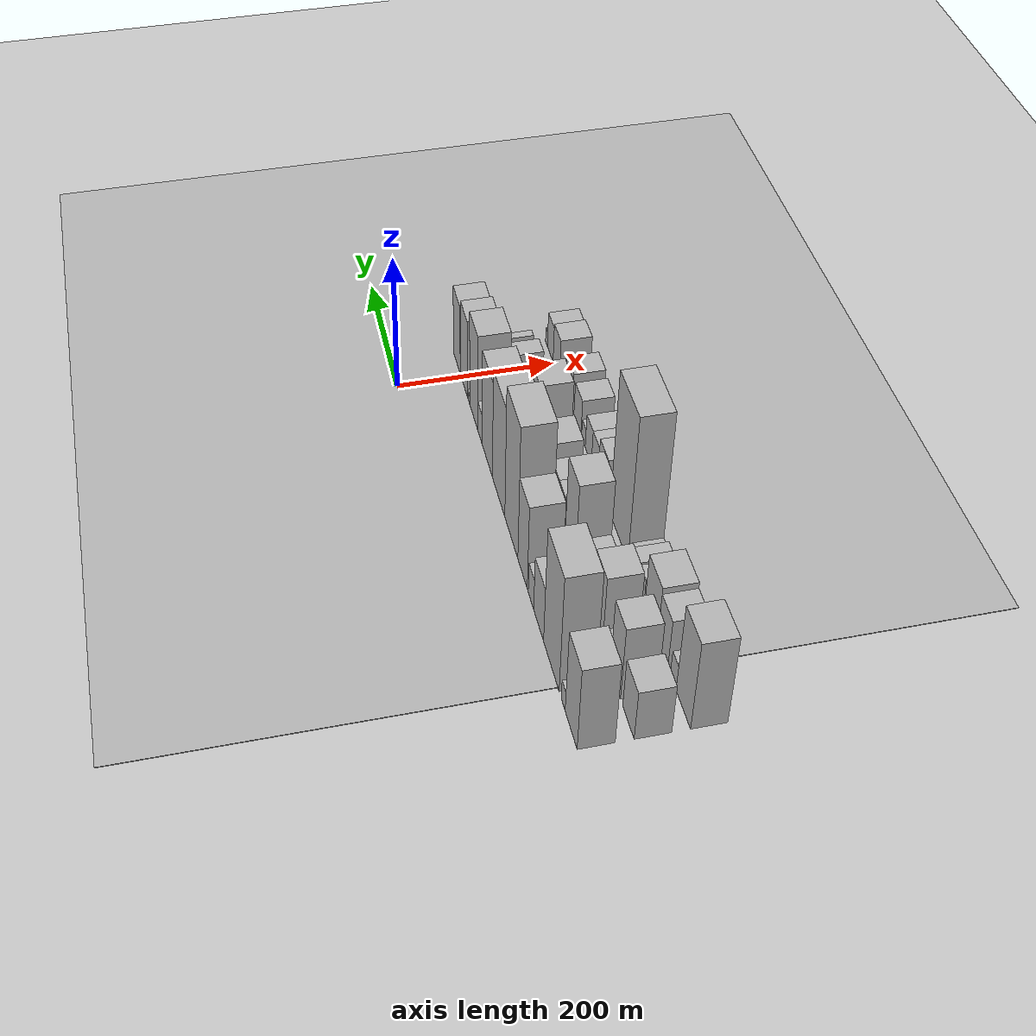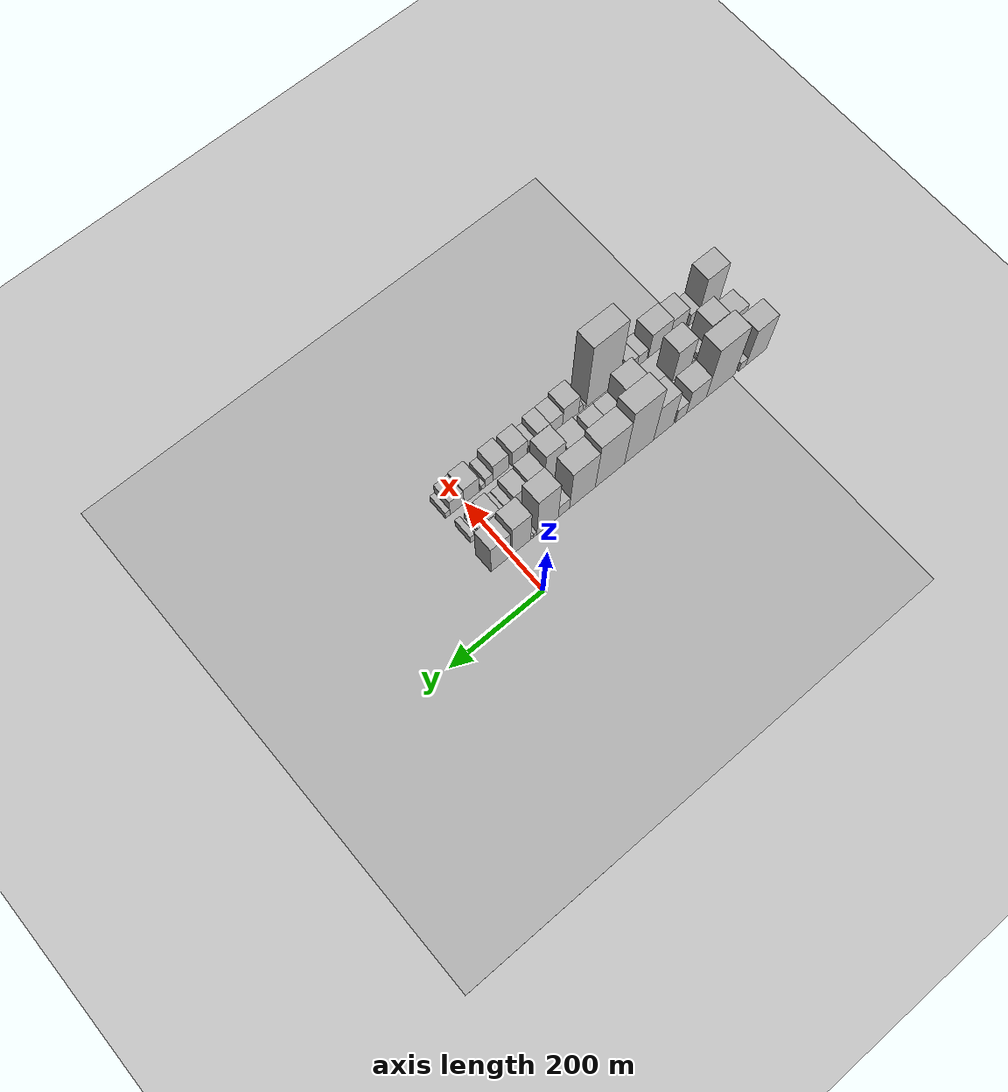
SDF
<sdf version="1.6">
 <world name="default">
  <include><name>ground_plane_1</name><uri>model://HANNAS_ground_plane</uri></include>
  <include>
   <name>ground_plane_2</name>
   <uri>model://HANNAS_ground_plane</uri>
   <pose>100 0 0  0 0 0</pose>
  </include>
  <model name="building_1">
   <static>1</static>
   <pose>100.0000 -555.3121 0 0.000000 0.000000 0.000000</pose>
   <link name="link">
    <pose>0 0 63.00 0 0 0</pose>
    <collision name="collision"><geometry><box><size>40.0000 49.3757 126.0000</size></box></geometry></collision>
    <visual name="visual">
     <cast_shadows>0</cast_shadows>
     <geometry><box><size>40.0000 49.3757 126.0000</size></box></geometry>
     <material>
      <script>
       <uri>model://HANNAS_wall/materials/scripts</uri>
       <uri>model://HANNAS_wall/materials/textures</uri>
       <name>vrc/HANNAS_wall</name>
      </script>
     </material>
    </visual>
   </link>
  </model>
  <model name="building_2">
   <static>1</static>
   <pose>100.0000 -522.3731 0 0.000000 0.000000 0.000000</pose>
   <link name="link">
    <pose>0 0 15.00 0 0 0</pose>
    <collision name="collision"><geometry><box><size>40.0000 16.5024 30.0000</size></box></geometry></collision>
    <visual name="visual">
     <cast_shadows>0</cast_shadows>
     <geometry><box><size>40.0000 16.5024 30.0000</size></box></geometry>
     <material>
      <script>
       <uri>model://HANNAS_wall/materials/scripts</uri>
       <uri>model://HANNAS_wall/materials/textures</uri>
       <name>vrc/HANNAS_wall</name>
      </script>
     </material>
    </visual>
   </link>
  </model>
  <model name="building_3">
   <static>1</static>
   <pose>100.0000 -470.9707 0 0.000000 0.000000 0.000000</pose>
   <link name="link">
    <pose>0 0 88.50 0 0 0</pose>
    <collision name="collision"><geometry><box><size>40.0000 68.3023 177.0000</size></box></geometry></collision>
    <visual name="visual">
     <cast_shadows>0</cast_shadows>
     <geometry><box><size>40.0000 68.3023 177.0000</size></box></geometry>
     <material>
      <script>
       <uri>model://HANNAS_wall/materials/scripts</uri>
       <uri>model://HANNAS_wall/materials/textures</uri>
       <name>vrc/HANNAS_wall</name>
      </script>
     </material>
    </visual>
   </link>
  </model>
  <model name="building_4">
   <static>1</static>
   <pose>100.0000 -413.9577 0 0.000000 0.000000 0.000000</pose>
   <link name="link">
    <pose>0 0 42.00 0 0 0</pose>
    <collision name="collision"><geometry><box><size>40.0000 45.7238 84.0000</size></box></geometry></collision>
    <visual name="visual">
     <cast_shadows>0</cast_shadows>
     <geometry><box><size>40.0000 45.7238 84.0000</size></box></geometry>
     <material>
      <script>
       <uri>model://HANNAS_wall/materials/scripts</uri>
       <uri>model://HANNAS_wall/materials/textures</uri>
       <name>vrc/HANNAS_wall</name>
      </script>
     </material>
    </visual>
   </link>
  </model>
  <model name="building_5">
   <static>1</static>
   <pose>100.0000 -378.4244 0 0.000000 0.000000 0.000000</pose>
   <link name="link">
    <pose>0 0 24.00 0 0 0</pose>
    <collision name="collision"><geometry><box><size>40.0000 25.3428 48.0000</size></box></geometry></collision>
    <visual name="visual">
     <cast_shadows>0</cast_shadows>
     <geometry><box><size>40.0000 25.3428 48.0000</size></box></geometry>
     <material>
      <script>
       <uri>model://HANNAS_wall/materials/scripts</uri>
       <uri>model://HANNAS_wall/materials/textures</uri>
       <name>vrc/HANNAS_wall</name>
      </script>
     </material>
    </visual>
   </link>
  </model>
  <model name="building_6">
   <static>1</static>
   <pose>100.0000 -337.9833 0 0.000000 0.000000 0.000000</pose>
   <link name="link">
    <pose>0 0 64.50 0 0 0</pose>
    <collision name="collision"><geometry><box><size>40.0000 45.5393 129.0000</size></box></geometry></collision>
    <visual name="visual">
     <cast_shadows>0</cast_shadows>
     <geometry><box><size>40.0000 45.5393 129.0000</size></box></geometry>
     <material>
      <script>
       <uri>model://HANNAS_wall/materials/scripts</uri>
       <uri>model://HANNAS_wall/materials/textures</uri>
       <name>vrc/HANNAS_wall</name>
      </script>
     </material>
    </visual>
   </link>
  </model>
  <model name="building_7">
   <static>1</static>
   <pose>100.0000 -282.1577 0 0.000000 0.000000 0.000000</pose>
   <link name="link">
    <pose>0 0 102.00 0 0 0</pose>
    <collision name="collision"><geometry><box><size>40.0000 66.1120 204.0000</size></box></geometry></collision>
    <visual name="visual">
     <cast_shadows>0</cast_shadows>
     <geometry><box><size>40.0000 66.1120 204.0000</size></box></geometry>
     <material>
      <script>
       <uri>model://HANNAS_wall/materials/scripts</uri>
       <uri>model://HANNAS_wall/materials/textures</uri>
       <name>vrc/HANNAS_wall</name>
      </script>
     </material>
    </visual>
   </link>
  </model>
  <model name="building_8">
   <static>1</static>
   <pose>100.0000 -216.1308 0 0.000000 0.000000 0.000000</pose>
   <link name="link">
    <pose>0 0 85.50 0 0 0</pose>
    <collision name="collision"><geometry><box><size>40.0000 65.9419 171.0000</size></box></geometry></collision>
    <visual name="visual">
     <cast_shadows>0</cast_shadows>
     <geometry><box><size>40.0000 65.9419 171.0000</size></box></geometry>
     <material>
      <script>
       <uri>model://HANNAS_wall/materials/scripts</uri>
       <uri>model://HANNAS_wall/materials/textures</uri>
       <name>vrc/HANNAS_wall</name>
      </script>
     </material>
    </visual>
   </link>
  </model>
  <model name="building_9">
   <static>1</static>
   <pose>100.0000 -154.5169 0 0.000000 0.000000 0.000000</pose>
   <link name="link">
    <pose>0 0 75.00 0 0 0</pose>
    <collision name="collision"><geometry><box><size>40.0000 57.2859 150.0000</size></box></geometry></collision>
    <visual name="visual">
     <cast_shadows>0</cast_shadows>
     <geometry><box><size>40.0000 57.2859 150.0000</size></box></geometry>
     <material>
      <script>
       <uri>model://HANNAS_wall/materials/scripts</uri>
       <uri>model://HANNAS_wall/materials/textures</uri>
       <name>vrc/HANNAS_wall</name>
      </script>
     </material>
    </visual>
   </link>
  </model>
  <model name="building_10">
   <static>1</static>
   <pose>100.0000 -113.4547 0 0.000000 0.000000 0.000000</pose>
   <link name="link">
    <pose>0 0 24.00 0 0 0</pose>
    <collision name="collision"><geometry><box><size>40.0000 24.8384 48.0000</size></box></geometry></collision>
    <visual name="visual">
     <cast_shadows>0</cast_shadows>
     <geometry><box><size>40.0000 24.8384 48.0000</size></box></geometry>
     <material>
      <script>
       <uri>model://HANNAS_wall/materials/scripts</uri>
       <uri>model://HANNAS_wall/materials/textures</uri>
       <name>vrc/HANNAS_wall</name>
      </script>
     </material>
    </visual>
   </link>
  </model>
  <model name="building_11">
   <static>1</static>
   <pose>100.0000 -77.6060 0 0.000000 0.000000 0.000000</pose>
   <link name="link">
    <pose>0 0 75.00 0 0 0</pose>
    <collision name="collision"><geometry><box><size>40.0000 46.8589 150.0000</size></box></geometry></collision>
    <visual name="visual">
     <cast_shadows>0</cast_shadows>
     <geometry><box><size>40.0000 46.8589 150.0000</size></box></geometry>
     <material>
      <script>
       <uri>model://HANNAS_wall/materials/scripts</uri>
       <uri>model://HANNAS_wall/materials/textures</uri>
       <name>vrc/HANNAS_wall</name>
      </script>
     </material>
    </visual>
   </link>
  </model>
  <model name="building_12">
   <static>1</static>
   <pose>100.0000 -50.6539 0 0.000000 0.000000 0.000000</pose>
   <link name="link">
    <pose>0 0 7.50 0 0 0</pose>
    <collision name="collision"><geometry><box><size>40.0000 7.0453 15.0000</size></box></geometry></collision>
    <visual name="visual">
     <cast_shadows>0</cast_shadows>
     <geometry><box><size>40.0000 7.0453 15.0000</size></box></geometry>
     <material>
      <script>
       <uri>model://HANNAS_wall/materials/scripts</uri>
       <uri>model://HANNAS_wall/materials/textures</uri>
       <name>vrc/HANNAS_wall</name>
      </script>
     </material>
    </visual>
   </link>
  </model>
  <model name="building_13">
   <static>1</static>
   <pose>100.0000 -43.9323 0 0.000000 0.000000 0.000000</pose>
   <link name="link">
    <pose>0 0 7.50 0 0 0</pose>
    <collision name="collision"><geometry><box><size>40.0000 6.3979 15.0000</size></box></geometry></collision>
    <visual name="visual">
     <cast_shadows>0</cast_shadows>
     <geometry><box><size>40.0000 6.3979 15.0000</size></box></geometry>
     <material>
      <script>
       <uri>model://HANNAS_wall/materials/scripts</uri>
       <uri>model://HANNAS_wall/materials/textures</uri>
       <name>vrc/HANNAS_wall</name>
      </script>
     </material>
    </visual>
   </link>
  </model>
  <model name="building_14">
   <static>1</static>
   <pose>100.0000 -20.3812 0 0.000000 0.000000 0.000000</pose>
   <link name="link">
    <pose>0 0 61.50 0 0 0</pose>
    <collision name="collision"><geometry><box><size>40.0000 40.7043 123.0000</size></box></geometry></collision>
    <visual name="visual">
     <cast_shadows>0</cast_shadows>
     <geometry><box><size>40.0000 40.7043 123.0000</size></box></geometry>
     <material>
      <script>
       <uri>model://HANNAS_wall/materials/scripts</uri>
       <uri>model://HANNAS_wall/materials/textures</uri>
       <name>vrc/HANNAS_wall</name>
      </script>
     </material>
    </visual>
   </link>
  </model>
  <model name="building_15">
   <static>1</static>
   <pose>100.0000 24.4911 0 0.000000 0.000000 0.000000</pose>
   <link name="link">
    <pose>0 0 55.50 0 0 0</pose>
    <collision name="collision"><geometry><box><size>40.0000 41.0403 111.0000</size></box></geometry></collision>
    <visual name="visual">
     <cast_shadows>0</cast_shadows>
     <geometry><box><size>40.0000 41.0403 111.0000</size></box></geometry>
     <material>
      <script>
       <uri>model://HANNAS_wall/materials/scripts</uri>
       <uri>model://HANNAS_wall/materials/textures</uri>
       <name>vrc/HANNAS_wall</name>
      </script>
     </material>
    </visual>
   </link>
  </model>
  <model name="building_38">
   <static>1</static>
   <pose>160.0000 -558.5366 0 0.000000 0.000000 0.000000</pose>
   <link name="link">
    <pose>0 0 37.50 0 0 0</pose>
    <collision name="collision"><geometry><box><size>40.0000 42.9268 75.0000</size></box></geometry></collision>
    <visual name="visual">
     <cast_shadows>0</cast_shadows>
     <geometry><box><size>40.0000 42.9268 75.0000</size></box></geometry>
     <material>
      <script>
       <uri>model://HANNAS_wall/materials/scripts</uri>
       <uri>model://HANNAS_wall/materials/textures</uri>
       <name>vrc/HANNAS_wall</name>
      </script>
     </material>
    </visual>
   </link>
  </model>
  <model name="building_39">
   <static>1</static>
   <pose>160.0000 -508.1155 0 0.000000 0.000000 0.000000</pose>
   <link name="link">
    <pose>0 0 55.50 0 0 0</pose>
    <collision name="collision"><geometry><box><size>40.0000 39.9153 111.0000</size></box></geometry></collision>
    <visual name="visual">
     <cast_shadows>0</cast_shadows>
     <geometry><box><size>40.0000 39.9153 111.0000</size></box></geometry>
     <material>
      <script>
       <uri>model://HANNAS_wall/materials/scripts</uri>
       <uri>model://HANNAS_wall/materials/textures</uri>
       <name>vrc/HANNAS_wall</name>
      </script>
     </material>
    </visual>
   </link>
  </model>
  <model name="building_40">
   <static>1</static>
   <pose>160.0000 -476.9015 0 0.000000 0.000000 0.000000</pose>
   <link name="link">
    <pose>0 0 19.50 0 0 0</pose>
    <collision name="collision"><geometry><box><size>40.0000 22.5127 39.0000</size></box></geometry></collision>
    <visual name="visual">
     <cast_shadows>0</cast_shadows>
     <geometry><box><size>40.0000 22.5127 39.0000</size></box></geometry>
     <material>
      <script>
       <uri>model://HANNAS_wall/materials/scripts</uri>
       <uri>model://HANNAS_wall/materials/textures</uri>
       <name>vrc/HANNAS_wall</name>
      </script>
     </material>
    </visual>
   </link>
  </model>
  <model name="building_41">
   <static>1</static>
   <pose>160.0000 -461.2020 0 0.000000 0.000000 0.000000</pose>
   <link name="link">
    <pose>0 0 9.00 0 0 0</pose>
    <collision name="collision"><geometry><box><size>40.0000 8.8863 18.0000</size></box></geometry></collision>
    <visual name="visual">
     <cast_shadows>0</cast_shadows>
     <geometry><box><size>40.0000 8.8863 18.0000</size></box></geometry>
     <material>
      <script>
       <uri>model://HANNAS_wall/materials/scripts</uri>
       <uri>model://HANNAS_wall/materials/textures</uri>
       <name>vrc/HANNAS_wall</name>
      </script>
     </material>
    </visual>
   </link>
  </model>
  <model name="building_42">
   <static>1</static>
   <pose>160.0000 -435.3343 0 0.000000 0.000000 0.000000</pose>
   <link name="link">
    <pose>0 0 54.00 0 0 0</pose>
    <collision name="collision"><geometry><box><size>40.0000 42.8492 108.0000</size></box></geometry></collision>
    <visual name="visual">
     <cast_shadows>0</cast_shadows>
     <geometry><box><size>40.0000 42.8492 108.0000</size></box></geometry>
     <material>
      <script>
       <uri>model://HANNAS_wall/materials/scripts</uri>
       <uri>model://HANNAS_wall/materials/textures</uri>
       <name>vrc/HANNAS_wall</name>
      </script>
     </material>
    </visual>
   </link>
  </model>
  <model name="building_43">
   <static>1</static>
   <pose>160.0000 -369.8815 0 0.000000 0.000000 0.000000</pose>
   <link name="link">
    <pose>0 0 10.50 0 0 0</pose>
    <collision name="collision"><geometry><box><size>40.0000 8.6854 21.0000</size></box></geometry></collision>
    <visual name="visual">
     <cast_shadows>0</cast_shadows>
     <geometry><box><size>40.0000 8.6854 21.0000</size></box></geometry>
     <material>
      <script>
       <uri>model://HANNAS_wall/materials/scripts</uri>
       <uri>model://HANNAS_wall/materials/textures</uri>
       <name>vrc/HANNAS_wall</name>
      </script>
     </material>
    </visual>
   </link>
  </model>
  <model name="building_44">
   <static>1</static>
   <pose>160.0000 -353.2454 0 0.000000 0.000000 0.000000</pose>
   <link name="link">
    <pose>0 0 22.50 0 0 0</pose>
    <collision name="collision"><geometry><box><size>40.0000 24.5867 45.0000</size></box></geometry></collision>
    <visual name="visual">
     <cast_shadows>0</cast_shadows>
     <geometry><box><size>40.0000 24.5867 45.0000</size></box></geometry>
     <material>
      <script>
       <uri>model://HANNAS_wall/materials/scripts</uri>
       <uri>model://HANNAS_wall/materials/textures</uri>
       <name>vrc/HANNAS_wall</name>
      </script>
     </material>
    </visual>
   </link>
  </model>
  <model name="building_45">
   <static>1</static>
   <pose>160.0000 -317.7670 0 0.000000 0.000000 0.000000</pose>
   <link name="link">
    <pose>0 0 64.50 0 0 0</pose>
    <collision name="collision"><geometry><box><size>40.0000 46.3700 129.0000</size></box></geometry></collision>
    <visual name="visual">
     <cast_shadows>0</cast_shadows>
     <geometry><box><size>40.0000 46.3700 129.0000</size></box></geometry>
     <material>
      <script>
       <uri>model://HANNAS_wall/materials/scripts</uri>
       <uri>model://HANNAS_wall/materials/textures</uri>
       <name>vrc/HANNAS_wall</name>
      </script>
     </material>
    </visual>
   </link>
  </model>
  <model name="building_46">
   <static>1</static>
   <pose>160.0000 -278.0836 0 0.000000 0.000000 0.000000</pose>
   <link name="link">
    <pose>0 0 30.00 0 0 0</pose>
    <collision name="collision"><geometry><box><size>40.0000 32.9968 60.0000</size></box></geometry></collision>
    <visual name="visual">
     <cast_shadows>0</cast_shadows>
     <geometry><box><size>40.0000 32.9968 60.0000</size></box></geometry>
     <material>
      <script>
       <uri>model://HANNAS_wall/materials/scripts</uri>
       <uri>model://HANNAS_wall/materials/textures</uri>
       <name>vrc/HANNAS_wall</name>
      </script>
     </material>
    </visual>
   </link>
  </model>
  <model name="building_47">
   <static>1</static>
   <pose>160.0000 -244.3424 0 0.000000 0.000000 0.000000</pose>
   <link name="link">
    <pose>0 0 30.00 0 0 0</pose>
    <collision name="collision"><geometry><box><size>40.0000 34.4856 60.0000</size></box></geometry></collision>
    <visual name="visual">
     <cast_shadows>0</cast_shadows>
     <geometry><box><size>40.0000 34.4856 60.0000</size></box></geometry>
     <material>
      <script>
       <uri>model://HANNAS_wall/materials/scripts</uri>
       <uri>model://HANNAS_wall/materials/textures</uri>
       <name>vrc/HANNAS_wall</name>
      </script>
     </material>
    </visual>
   </link>
  </model>
  <model name="building_48">
   <static>1</static>
   <pose>160.0000 -221.3875 0 0.000000 0.000000 0.000000</pose>
   <link name="link">
    <pose>0 0 13.50 0 0 0</pose>
    <collision name="collision"><geometry><box><size>40.0000 11.4244 27.0000</size></box></geometry></collision>
    <visual name="visual">
     <cast_shadows>0</cast_shadows>
     <geometry><box><size>40.0000 11.4244 27.0000</size></box></geometry>
     <material>
      <script>
       <uri>model://HANNAS_wall/materials/scripts</uri>
       <uri>model://HANNAS_wall/materials/textures</uri>
       <name>vrc/HANNAS_wall</name>
      </script>
     </material>
    </visual>
   </link>
  </model>
  <model name="building_49">
   <static>1</static>
   <pose>160.0000 -194.1854 0 0.000000 0.000000 0.000000</pose>
   <link name="link">
    <pose>0 0 36.00 0 0 0</pose>
    <collision name="collision"><geometry><box><size>40.0000 42.9797 72.0000</size></box></geometry></collision>
    <visual name="visual">
     <cast_shadows>0</cast_shadows>
     <geometry><box><size>40.0000 42.9797 72.0000</size></box></geometry>
     <material>
      <script>
       <uri>model://HANNAS_wall/materials/scripts</uri>
       <uri>model://HANNAS_wall/materials/textures</uri>
       <name>vrc/HANNAS_wall</name>
      </script>
     </material>
    </visual>
   </link>
  </model>
  <model name="building_50">
   <static>1</static>
   <pose>160.0000 -143.6674 0 0.000000 0.000000 0.000000</pose>
   <link name="link">
    <pose>0 0 58.50 0 0 0</pose>
    <collision name="collision"><geometry><box><size>40.0000 42.0563 117.0000</size></box></geometry></collision>
    <visual name="visual">
     <cast_shadows>0</cast_shadows>
     <geometry><box><size>40.0000 42.0563 117.0000</size></box></geometry>
     <material>
      <script>
       <uri>model://HANNAS_wall/materials/scripts</uri>
       <uri>model://HANNAS_wall/materials/textures</uri>
       <name>vrc/HANNAS_wall</name>
      </script>
     </material>
    </visual>
   </link>
  </model>
  <model name="building_51">
   <static>1</static>
   <pose>160.0000 -104.6968 0 0.000000 0.000000 0.000000</pose>
   <link name="link">
    <pose>0 0 34.50 0 0 0</pose>
    <collision name="collision"><geometry><box><size>40.0000 35.8851 69.0000</size></box></geometry></collision>
    <visual name="visual">
     <cast_shadows>0</cast_shadows>
     <geometry><box><size>40.0000 35.8851 69.0000</size></box></geometry>
     <material>
      <script>
       <uri>model://HANNAS_wall/materials/scripts</uri>
       <uri>model://HANNAS_wall/materials/textures</uri>
       <name>vrc/HANNAS_wall</name>
      </script>
     </material>
    </visual>
   </link>
  </model>
  <model name="building_52">
   <static>1</static>
   <pose>160.0000 -70.5678 0 0.000000 0.000000 0.000000</pose>
   <link name="link">
    <pose>0 0 27.00 0 0 0</pose>
    <collision name="collision"><geometry><box><size>40.0000 32.3729 54.0000</size></box></geometry></collision>
    <visual name="visual">
     <cast_shadows>0</cast_shadows>
     <geometry><box><size>40.0000 32.3729 54.0000</size></box></geometry>
     <material>
      <script>
       <uri>model://HANNAS_wall/materials/scripts</uri>
       <uri>model://HANNAS_wall/materials/textures</uri>
       <name>vrc/HANNAS_wall</name>
      </script>
     </material>
    </visual>
   </link>
  </model>
  <model name="building_53">
   <static>1</static>
   <pose>160.0000 -46.2525 0 0.000000 0.000000 0.000000</pose>
   <link name="link">
    <pose>0 0 15.00 0 0 0</pose>
    <collision name="collision"><geometry><box><size>40.0000 16.2577 30.0000</size></box></geometry></collision>
    <visual name="visual">
     <cast_shadows>0</cast_shadows>
     <geometry><box><size>40.0000 16.2577 30.0000</size></box></geometry>
     <material>
      <script>
       <uri>model://HANNAS_wall/materials/scripts</uri>
       <uri>model://HANNAS_wall/materials/textures</uri>
       <name>vrc/HANNAS_wall</name>
      </script>
     </material>
    </visual>
   </link>
  </model>
  <model name="building_54">
   <static>1</static>
   <pose>160.0000 -31.9831 0 0.000000 0.000000 0.000000</pose>
   <link name="link">
    <pose>0 0 13.50 0 0 0</pose>
    <collision name="collision"><geometry><box><size>40.0000 12.2810 27.0000</size></box></geometry></collision>
    <visual name="visual">
     <cast_shadows>0</cast_shadows>
     <geometry><box><size>40.0000 12.2810 27.0000</size></box></geometry>
     <material>
      <script>
       <uri>model://HANNAS_wall/materials/scripts</uri>
       <uri>model://HANNAS_wall/materials/textures</uri>
       <name>vrc/HANNAS_wall</name>
      </script>
     </material>
    </visual>
   </link>
  </model>
  <model name="building_55">
   <static>1</static>
   <pose>160.0000 -12.8984 0 0.000000 0.000000 0.000000</pose>
   <link name="link">
    <pose>0 0 22.50 0 0 0</pose>
    <collision name="collision"><geometry><box><size>40.0000 25.8883 45.0000</size></box></geometry></collision>
    <visual name="visual">
     <cast_shadows>0</cast_shadows>
     <geometry><box><size>40.0000 25.8883 45.0000</size></box></geometry>
     <material>
      <script>
       <uri>model://HANNAS_wall/materials/scripts</uri>
       <uri>model://HANNAS_wall/materials/textures</uri>
       <name>vrc/HANNAS_wall</name>
      </script>
     </material>
    </visual>
   </link>
  </model>
  <model name="building_56">
   <static>1</static>
   <pose>160.0000 12.7486 0 0.000000 0.000000 0.000000</pose>
   <link name="link">
    <pose>0 0 12.00 0 0 0</pose>
    <collision name="collision"><geometry><box><size>40.0000 11.4057 24.0000</size></box></geometry></collision>
    <visual name="visual">
     <cast_shadows>0</cast_shadows>
     <geometry><box><size>40.0000 11.4057 24.0000</size></box></geometry>
     <material>
      <script>
       <uri>model://HANNAS_wall/materials/scripts</uri>
       <uri>model://HANNAS_wall/materials/textures</uri>
       <name>vrc/HANNAS_wall</name>
      </script>
     </material>
    </visual>
   </link>
  </model>
  <model name="building_57">
   <static>1</static>
   <pose>160.0000 33.0077 0 0.000000 0.000000 0.000000</pose>
   <link name="link">
    <pose>0 0 13.50 0 0 0</pose>
    <collision name="collision"><geometry><box><size>40.0000 11.1126 27.0000</size></box></geometry></collision>
    <visual name="visual">
     <cast_shadows>0</cast_shadows>
     <geometry><box><size>40.0000 11.1126 27.0000</size></box></geometry>
     <material>
      <script>
       <uri>model://HANNAS_wall/materials/scripts</uri>
       <uri>model://HANNAS_wall/materials/textures</uri>
       <name>vrc/HANNAS_wall</name>
      </script>
     </material>
    </visual>
   </link>
  </model>
  <model name="building_75">
   <static>1</static>
   <pose>220.0000 -554.5929 0 0.000000 0.000000 0.000000</pose>
   <link name="link">
    <pose>0 0 67.50 0 0 0</pose>
    <collision name="collision"><geometry><box><size>40.0000 50.8142 135.0000</size></box></geometry></collision>
    <visual name="visual">
     <cast_shadows>0</cast_shadows>
     <geometry><box><size>40.0000 50.8142 135.0000</size></box></geometry>
     <material>
      <script>
       <uri>model://HANNAS_wall/materials/scripts</uri>
       <uri>model://HANNAS_wall/materials/textures</uri>
       <name>vrc/HANNAS_wall</name>
      </script>
     </material>
    </visual>
   </link>
  </model>
  <model name="building_76">
   <static>1</static>
   <pose>220.0000 -518.7529 0 0.000000 0.000000 0.000000</pose>
   <link name="link">
    <pose>0 0 19.50 0 0 0</pose>
    <collision name="collision"><geometry><box><size>40.0000 20.8658 39.0000</size></box></geometry></collision>
    <visual name="visual">
     <cast_shadows>0</cast_shadows>
     <geometry><box><size>40.0000 20.8658 39.0000</size></box></geometry>
     <material>
      <script>
       <uri>model://HANNAS_wall/materials/scripts</uri>
       <uri>model://HANNAS_wall/materials/textures</uri>
       <name>vrc/HANNAS_wall</name>
      </script>
     </material>
    </visual>
   </link>
  </model>
  <model name="building_77">
   <static>1</static>
   <pose>220.0000 -480.0790 0 0.000000 0.000000 0.000000</pose>
   <link name="link">
    <pose>0 0 37.50 0 0 0</pose>
    <collision name="collision"><geometry><box><size>40.0000 38.4819 75.0000</size></box></geometry></collision>
    <visual name="visual">
     <cast_shadows>0</cast_shadows>
     <geometry><box><size>40.0000 38.4819 75.0000</size></box></geometry>
     <material>
      <script>
       <uri>model://HANNAS_wall/materials/scripts</uri>
       <uri>model://HANNAS_wall/materials/textures</uri>
       <name>vrc/HANNAS_wall</name>
      </script>
     </material>
    </visual>
   </link>
  </model>
  <model name="building_78">
   <static>1</static>
   <pose>220.0000 -436.5116 0 0.000000 0.000000 0.000000</pose>
   <link name="link">
    <pose>0 0 42.00 0 0 0</pose>
    <collision name="collision"><geometry><box><size>40.0000 48.6530 84.0000</size></box></geometry></collision>
    <visual name="visual">
     <cast_shadows>0</cast_shadows>
     <geometry><box><size>40.0000 48.6530 84.0000</size></box></geometry>
     <material>
      <script>
       <uri>model://HANNAS_wall/materials/scripts</uri>
       <uri>model://HANNAS_wall/materials/textures</uri>
       <name>vrc/HANNAS_wall</name>
      </script>
     </material>
    </visual>
   </link>
  </model>
  <model name="building_79">
   <static>1</static>
   <pose>220.0000 -397.5646 0 0.000000 0.000000 0.000000</pose>
   <link name="link">
    <pose>0 0 19.50 0 0 0</pose>
    <collision name="collision"><geometry><box><size>40.0000 23.2411 39.0000</size></box></geometry></collision>
    <visual name="visual">
     <cast_shadows>0</cast_shadows>
     <geometry><box><size>40.0000 23.2411 39.0000</size></box></geometry>
     <material>
      <script>
       <uri>model://HANNAS_wall/materials/scripts</uri>
       <uri>model://HANNAS_wall/materials/textures</uri>
       <name>vrc/HANNAS_wall</name>
      </script>
     </material>
    </visual>
   </link>
  </model>
  <model name="building_80">
   <static>1</static>
   <pose>220.0000 -373.7842 0 0.000000 0.000000 0.000000</pose>
   <link name="link">
    <pose>0 0 21.00 0 0 0</pose>
    <collision name="collision"><geometry><box><size>40.0000 24.3196 42.0000</size></box></geometry></collision>
    <visual name="visual">
     <cast_shadows>0</cast_shadows>
     <geometry><box><size>40.0000 24.3196 42.0000</size></box></geometry>
     <material>
      <script>
       <uri>model://HANNAS_wall/materials/scripts</uri>
       <uri>model://HANNAS_wall/materials/textures</uri>
       <name>vrc/HANNAS_wall</name>
      </script>
     </material>
    </visual>
   </link>
  </model>
  <model name="building_81">
   <static>1</static>
   <pose>220.0000 -353.1597 0 0.000000 0.000000 0.000000</pose>
   <link name="link">
    <pose>0 0 15.00 0 0 0</pose>
    <collision name="collision"><geometry><box><size>40.0000 16.9293 30.0000</size></box></geometry></collision>
    <visual name="visual">
     <cast_shadows>0</cast_shadows>
     <geometry><box><size>40.0000 16.9293 30.0000</size></box></geometry>
     <material>
      <script>
       <uri>model://HANNAS_wall/materials/scripts</uri>
       <uri>model://HANNAS_wall/materials/textures</uri>
       <name>vrc/HANNAS_wall</name>
      </script>
     </material>
    </visual>
   </link>
  </model>
  <model name="building_82">
   <static>1</static>
   <pose>220.0000 -306.6809 0 0.000000 0.000000 0.000000</pose>
   <link name="link">
    <pose>0 0 111.00 0 0 0</pose>
    <collision name="collision"><geometry><box><size>40.0000 76.0284 222.0000</size></box></geometry></collision>
    <visual name="visual">
     <cast_shadows>0</cast_shadows>
     <geometry><box><size>40.0000 76.0284 222.0000</size></box></geometry>
     <material>
      <script>
       <uri>model://HANNAS_wall/materials/scripts</uri>
       <uri>model://HANNAS_wall/materials/textures</uri>
       <name>vrc/HANNAS_wall</name>
      </script>
     </material>
    </visual>
   </link>
  </model>
  <model name="building_83">
   <static>1</static>
   <pose>220.0000 -265.0636 0 0.000000 0.000000 0.000000</pose>
   <link name="link">
    <pose>0 0 7.50 0 0 0</pose>
    <collision name="collision"><geometry><box><size>40.0000 7.2062 15.0000</size></box></geometry></collision>
    <visual name="visual">
     <cast_shadows>0</cast_shadows>
     <geometry><box><size>40.0000 7.2062 15.0000</size></box></geometry>
     <material>
      <script>
       <uri>model://HANNAS_wall/materials/scripts</uri>
       <uri>model://HANNAS_wall/materials/textures</uri>
       <name>vrc/HANNAS_wall</name>
      </script>
     </material>
    </visual>
   </link>
  </model>
  <model name="building_84">
   <static>1</static>
   <pose>220.0000 -256.5639 0 0.000000 0.000000 0.000000</pose>
   <link name="link">
    <pose>0 0 12.00 0 0 0</pose>
    <collision name="collision"><geometry><box><size>40.0000 9.7931 24.0000</size></box></geometry></collision>
    <visual name="visual">
     <cast_shadows>0</cast_shadows>
     <geometry><box><size>40.0000 9.7931 24.0000</size></box></geometry>
     <material>
      <script>
       <uri>model://HANNAS_wall/materials/scripts</uri>
       <uri>model://HANNAS_wall/materials/textures</uri>
       <name>vrc/HANNAS_wall</name>
      </script>
     </material>
    </visual>
   </link>
  </model>
  <model name="building_85">
   <static>1</static>
   <pose>220.0000 -233.3128 0 0.000000 0.000000 0.000000</pose>
   <link name="link">
    <pose>0 0 34.50 0 0 0</pose>
    <collision name="collision"><geometry><box><size>40.0000 36.7091 69.0000</size></box></geometry></collision>
    <visual name="visual">
     <cast_shadows>0</cast_shadows>
     <geometry><box><size>40.0000 36.7091 69.0000</size></box></geometry>
     <material>
      <script>
       <uri>model://HANNAS_wall/materials/scripts</uri>
       <uri>model://HANNAS_wall/materials/textures</uri>
       <name>vrc/HANNAS_wall</name>
      </script>
     </material>
    </visual>
   </link>
  </model>
  <model name="building_86">
   <static>1</static>
   <pose>220.0000 -200.3165 0 0.000000 0.000000 0.000000</pose>
   <link name="link">
    <pose>0 0 27.00 0 0 0</pose>
    <collision name="collision"><geometry><box><size>40.0000 29.2835 54.0000</size></box></geometry></collision>
    <visual name="visual">
     <cast_shadows>0</cast_shadows>
     <geometry><box><size>40.0000 29.2835 54.0000</size></box></geometry>
     <material>
      <script>
       <uri>model://HANNAS_wall/materials/scripts</uri>
       <uri>model://HANNAS_wall/materials/textures</uri>
       <name>vrc/HANNAS_wall</name>
      </script>
     </material>
    </visual>
   </link>
  </model>
  <model name="building_87">
   <static>1</static>
   <pose>220.0000 -171.4361 0 0.000000 0.000000 0.000000</pose>
   <link name="link">
    <pose>0 0 27.00 0 0 0</pose>
    <collision name="collision"><geometry><box><size>40.0000 28.4773 54.0000</size></box></geometry></collision>
    <visual name="visual">
     <cast_shadows>0</cast_shadows>
     <geometry><box><size>40.0000 28.4773 54.0000</size></box></geometry>
     <material>
      <script>
       <uri>model://HANNAS_wall/materials/scripts</uri>
       <uri>model://HANNAS_wall/materials/textures</uri>
       <name>vrc/HANNAS_wall</name>
      </script>
     </material>
    </visual>
   </link>
  </model>
  <model name="building_88">
   <static>1</static>
   <pose>220.0000 -148.3523 0 0.000000 0.000000 0.000000</pose>
   <link name="link">
    <pose>0 0 15.00 0 0 0</pose>
    <collision name="collision"><geometry><box><size>40.0000 17.6904 30.0000</size></box></geometry></collision>
    <visual name="visual">
     <cast_shadows>0</cast_shadows>
     <geometry><box><size>40.0000 17.6904 30.0000</size></box></geometry>
     <material>
      <script>
       <uri>model://HANNAS_wall/materials/scripts</uri>
       <uri>model://HANNAS_wall/materials/textures</uri>
       <name>vrc/HANNAS_wall</name>
      </script>
     </material>
    </visual>
   </link>
  </model>
  <model name="building_89">
   <static>1</static>
   <pose>220.0000 -119.4590 0 0.000000 0.000000 0.000000</pose>
   <link name="link">
    <pose>0 0 28.50 0 0 0</pose>
    <collision name="collision"><geometry><box><size>40.0000 34.0962 57.0000</size></box></geometry></collision>
    <visual name="visual">
     <cast_shadows>0</cast_shadows>
     <geometry><box><size>40.0000 34.0962 57.0000</size></box></geometry>
     <material>
      <script>
       <uri>model://HANNAS_wall/materials/scripts</uri>
       <uri>model://HANNAS_wall/materials/textures</uri>
       <name>vrc/HANNAS_wall</name>
      </script>
     </material>
    </visual>
   </link>
  </model>
  <model name="building_90">
   <static>1</static>
   <pose>220.0000 -77.2919 0 0.000000 0.000000 0.000000</pose>
   <link name="link">
    <pose>0 0 31.50 0 0 0</pose>
    <collision name="collision"><geometry><box><size>40.0000 34.2380 63.0000</size></box></geometry></collision>
    <visual name="visual">
     <cast_shadows>0</cast_shadows>
     <geometry><box><size>40.0000 34.2380 63.0000</size></box></geometry>
     <material>
      <script>
       <uri>model://HANNAS_wall/materials/scripts</uri>
       <uri>model://HANNAS_wall/materials/textures</uri>
       <name>vrc/HANNAS_wall</name>
      </script>
     </material>
    </visual>
   </link>
  </model>
  <model name="building_91">
   <static>1</static>
   <pose>220.0000 -51.8924 0 0.000000 0.000000 0.000000</pose>
   <link name="link">
    <pose>0 0 16.50 0 0 0</pose>
    <collision name="collision"><geometry><box><size>40.0000 16.5610 33.0000</size></box></geometry></collision>
    <visual name="visual">
     <cast_shadows>0</cast_shadows>
     <geometry><box><size>40.0000 16.5610 33.0000</size></box></geometry>
     <material>
      <script>
       <uri>model://HANNAS_wall/materials/scripts</uri>
       <uri>model://HANNAS_wall/materials/textures</uri>
       <name>vrc/HANNAS_wall</name>
      </script>
     </material>
    </visual>
   </link>
  </model>
  <model name="building_92">
   <static>1</static>
   <pose>220.0000 -39.2620 0 0.000000 0.000000 0.000000</pose>
   <link name="link">
    <pose>0 0 9.00 0 0 0</pose>
    <collision name="collision"><geometry><box><size>40.0000 8.6998 18.0000</size></box></geometry></collision>
    <visual name="visual">
     <cast_shadows>0</cast_shadows>
     <geometry><box><size>40.0000 8.6998 18.0000</size></box></geometry>
     <material>
      <script>
       <uri>model://HANNAS_wall/materials/scripts</uri>
       <uri>model://HANNAS_wall/materials/textures</uri>
       <name>vrc/HANNAS_wall</name>
      </script>
     </material>
    </visual>
   </link>
  </model>
  <model name="building_93">
   <static>1</static>
   <pose>220.0000 -14.1629 0 0.000000 0.000000 0.000000</pose>
   <link name="link">
    <pose>0 0 31.50 0 0 0</pose>
    <collision name="collision"><geometry><box><size>40.0000 33.4984 63.0000</size></box></geometry></collision>
    <visual name="visual">
     <cast_shadows>0</cast_shadows>
     <geometry><box><size>40.0000 33.4984 63.0000</size></box></geometry>
     <material>
      <script>
       <uri>model://HANNAS_wall/materials/scripts</uri>
       <uri>model://HANNAS_wall/materials/textures</uri>
       <name>vrc/HANNAS_wall</name>
      </script>
     </material>
    </visual>
   </link>
  </model>
  <model name="building_94">
   <static>1</static>
   <pose>220.0000 17.5529 0 0.000000 0.000000 0.000000</pose>
   <link name="link">
    <pose>0 0 28.50 0 0 0</pose>
    <collision name="collision"><geometry><box><size>40.0000 29.9333 57.0000</size></box></geometry></collision>
    <visual name="visual">
     <cast_shadows>0</cast_shadows>
     <geometry><box><size>40.0000 29.9333 57.0000</size></box></geometry>
     <material>
      <script>
       <uri>model://HANNAS_wall/materials/scripts</uri>
       <uri>model://HANNAS_wall/materials/textures</uri>
       <name>vrc/HANNAS_wall</name>
      </script>
     </material>
    </visual>
   </link>
  </model>
  <model name="building_95">
   <static>1</static>
   <pose>220.0000 37.5719 0 0.000000 0.000000 0.000000</pose>
   <link name="link">
    <pose>0 0 12.00 0 0 0</pose>
    <collision name="collision"><geometry><box><size>40.0000 10.1047 24.0000</size></box></geometry></collision>
    <visual name="visual">
     <cast_shadows>0</cast_shadows>
     <geometry><box><size>40.0000 10.1047 24.0000</size></box></geometry>
     <material>
      <script>
       <uri>model://HANNAS_wall/materials/scripts</uri>
       <uri>model://HANNAS_wall/materials/textures</uri>
       <name>vrc/HANNAS_wall</name>
      </script>
     </material>
    </visual>
   </link>
  </model>
 </world>
</sdf>
